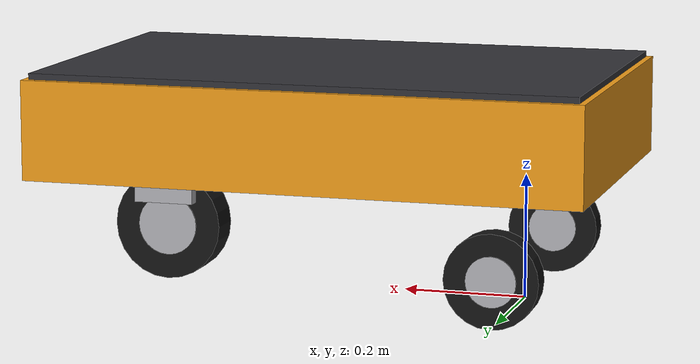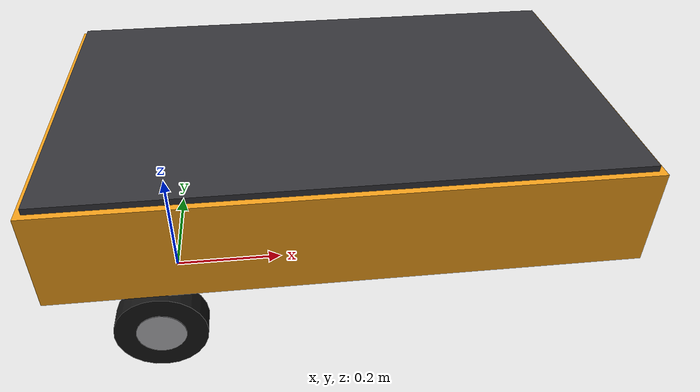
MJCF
<mujoco model="tricycle_agv">
  <compiler angle="radian" autolimits="true"/>

  <default>
    <default class="tricycle_agv">
      <default class="visual">
        <geom contype="0" conaffinity="0" group="2"/>
      </default>
      <default class="collision">
        <geom group="3" rgba="0.6 0.1 0.1 0.35"/>
      </default>
      <!-- See the header for why tyres are ellipsoids. -->
      <default class="tyre">
        <geom type="ellipsoid" group="3" rgba="0.1 0.1 0.1 0.4" friction="1.0 0.005 0.0001"/>
      </default>
    </default>
  </default>

  <asset>
    <material name="mat_tricycle_agv_body" rgba="0.95 0.62 0.10 1"/>
    <material name="mat_tricycle_agv_deck" rgba="0.20 0.20 0.22 1"/>
    <material name="mat_tricycle_agv_tyre" rgba="0.08 0.08 0.08 1"/>
    <material name="mat_tricycle_agv_hub" rgba="0.70 0.70 0.72 1"/>
  </asset>

  <worldbody>
    <body name="base_link" childclass="tricycle_agv">
      <freejoint name="base_free"/>
      <site name="base_imu" pos="0 0 0.28" size="0.005" rgba="0 0 0 0"/>
      <geom class="collision" name="chassis_geom" type="box" pos="0.30 0 0.28"
            size="0.45 0.28 0.08" mass="60"/>
      <geom class="visual" type="box" pos="0.30 0 0.28" size="0.45 0.28 0.08"
            material="mat_tricycle_agv_body"/>
      <geom class="visual" type="box" pos="0.30 0 0.365" size="0.44 0.27 0.005"
            material="mat_tricycle_agv_deck"/>

      <!-- Fixed rear axle, through base_link. ASSUMPTION: r = 0.075 m, 0.04 m wide, track 0.44 m.
           Passive here: nothing drives them, and tricycle_drive publishes them as passive_joints. -->
      <body name="rear_left_wheel" pos="0 0.22 0.075">
        <joint name="rear_left_wheel_joint" axis="0 1 0" damping="0.02" armature="0.005"/>
        <geom class="tyre" name="rear_left_wheel_geom" size="0.075 0.02 0.075" mass="2"/>
        <geom class="visual" type="cylinder" size="0.075 0.02" quat="0.7071068 0.7071068 0 0"
              material="mat_tricycle_agv_tyre"/>
        <geom class="visual" type="cylinder" size="0.04 0.021" quat="0.7071068 0.7071068 0 0"
              material="mat_tricycle_agv_hub"/>
      </body>
      <body name="rear_right_wheel" pos="0 -0.22 0.075">
        <joint name="rear_right_wheel_joint" axis="0 1 0" damping="0.02" armature="0.005"/>
        <geom class="tyre" name="rear_right_wheel_geom" size="0.075 0.02 0.075" mass="2"/>
        <geom class="visual" type="cylinder" size="0.075 0.02" quat="0.7071068 0.7071068 0 0"
              material="mat_tricycle_agv_tyre"/>
        <geom class="visual" type="cylinder" size="0.04 0.021" quat="0.7071068 0.7071068 0 0"
              material="mat_tricycle_agv_hub"/>
      </body>

      <body name="steer_link" pos="0.60 0 0.09">
        <joint name="steer_joint" axis="0 0 1" range="-1.3 1.3" damping="2" armature="0.05"/>
        <geom class="visual" type="box" pos="0 0 0.07" size="0.05 0.05 0.03" mass="1"
              material="mat_tricycle_agv_hub"/>
        <body name="front_wheel">
          <joint name="front_wheel_joint" axis="0 1 0" damping="0.05" armature="0.01"/>
          <geom class="tyre" name="front_wheel_geom" size="0.09 0.03 0.09" mass="3"/>
          <geom class="visual" type="cylinder" size="0.09 0.03" quat="0.7071068 0.7071068 0 0"
                material="mat_tricycle_agv_tyre"/>
          <geom class="visual" type="cylinder" size="0.05 0.031" quat="0.7071068 0.7071068 0 0"
                material="mat_tricycle_agv_hub"/>
        </body>
      </body>
    </body>
  </worldbody>

  <contact>
    <!-- MuJoCo excludes contacts only between a body and its direct parent; the front wheel is two
         bodies below the chassis, through the steering link. -->
    <exclude body1="base_link" body2="front_wheel"/>
  </contact>

  <actuator>
    <!-- Steering: a POSITION servo on the vertical axis. ASSUMPTION: gains and torque, chosen to
         follow the test's 2.0 rad/s steer_rate with the wheel loaded. -->
    <position name="steer_motor" joint="steer_joint" kp="400" ctrlrange="-1.3 1.3"
              forcerange="-80 80"/>
    <!-- Drive: a VELOCITY servo on the front wheel's roll, in rad/s. ctrlrange covers the test's
         max_wheel_speed (1.2 m/s) over r = 0.09. ASSUMPTION: gain and torque. -->
    <velocity name="front_wheel_motor" joint="front_wheel_joint" kv="30" ctrlrange="-14 14"
              forcerange="-40 40"/>
  </actuator>

  <keyframe>
    <key name="home" qpos="0 0 0.002 1 0 0 0  0 0 0 0"/>
  </keyframe>
</mujoco>
